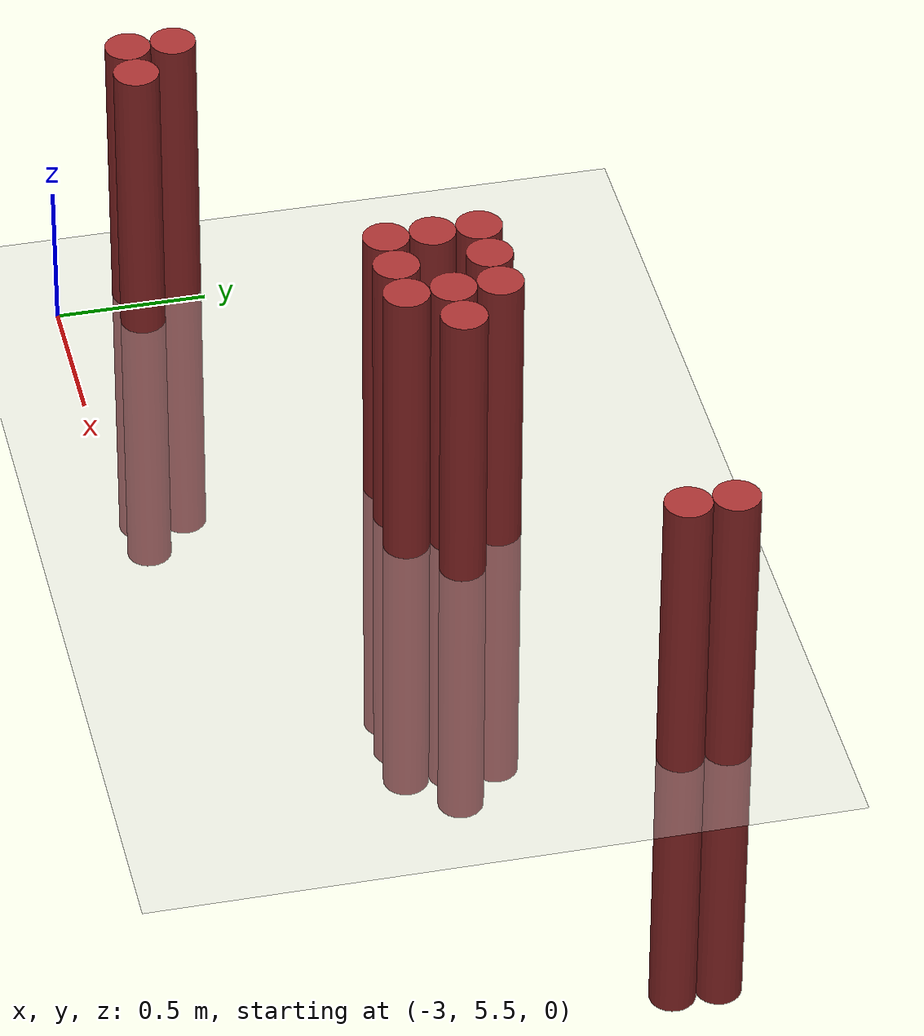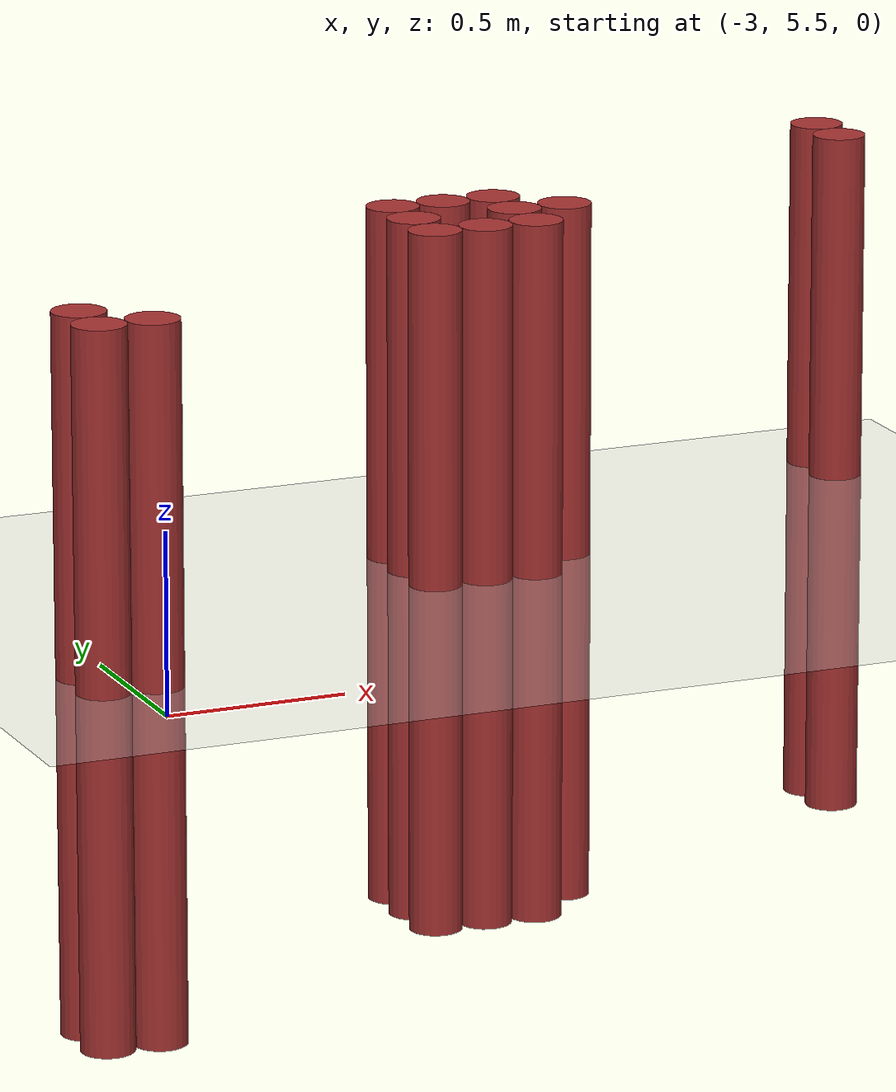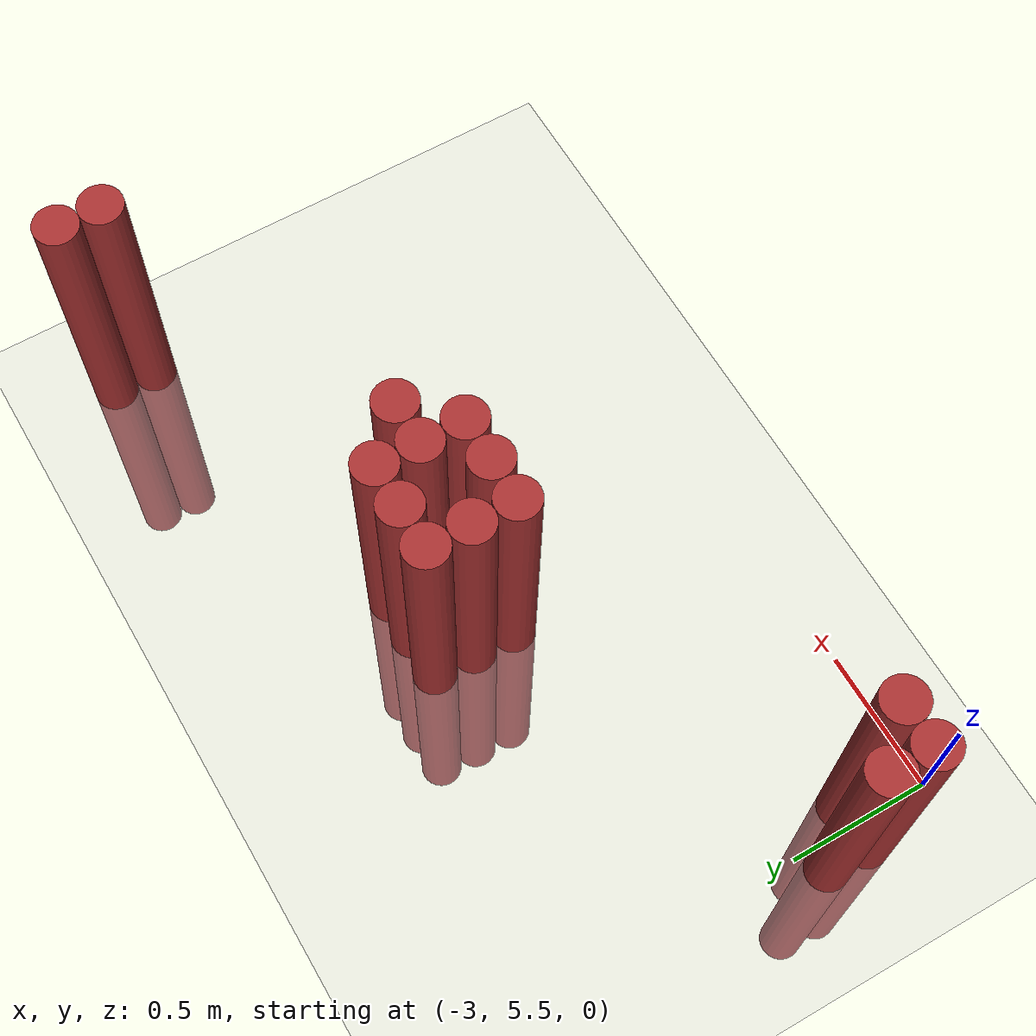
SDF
<sdf version="1.6">
 <world name="default">
  <model name="ground_plane">
   <static>1</static>
   <link name="link">
    <collision name="collision">
     <geometry><plane><normal>0 0 1</normal><size>100 100</size></plane></geometry>
     <surface><friction><ode><mu>100</mu><mu2>50</mu2></ode></friction></surface>
    </collision>
    <visual name="visual">
     <cast_shadows>0</cast_shadows>
     <geometry><plane><normal>0 0 1</normal><size>100 100</size></plane></geometry>
     <material>
      <script><uri>file://media/materials/scripts/gazebo.material</uri><name>Gazebo/Grey</name></script>
     </material>
    </visual>
   </link>
  </model>
  <model name="unit_cylinder_158">
   <static>1</static>
   <pose>-3.075000 5.775000 0.000000 0.000000 0.000000 0.000000</pose>
   <link name="link">
    <inertial>
     <mass>1</mass>
     <inertia><ixx>0.145833</ixx><ixy>0</ixy><ixz>0</ixz><iyy>0.145833</iyy><iyz>0</iyz><izz>0.125</izz></inertia>
    </inertial>
    <collision name="collision">
     <geometry><cylinder><radius>0.075000</radius><length>2</length></cylinder></geometry>
    </collision>
    <visual name="visual">
     <geometry><cylinder><radius>0.075000</radius><length>2</length></cylinder></geometry>
     <material>
      <ambient>0.648000 0.192000 0.192000 1</ambient>
      <diffuse>0.648000 0.192000 0.192000 1</diffuse>
     </material>
     <material>
      <script><name>Gazebo/Grey</name><uri>file://media/materials/scripts/gazebo.material</uri></script>
     </material>
    </visual>
   </link>
  </model>
  <model name="unit_cylinder_159">
   <static>1</static>
   <pose>-3.075000 5.925000 0.000000 0.000000 0.000000 0.000000</pose>
   <link name="link">
    <inertial>
     <mass>1</mass>
     <inertia><ixx>0.145833</ixx><ixy>0</ixy><ixz>0</ixz><iyy>0.145833</iyy><iyz>0</iyz><izz>0.125</izz></inertia>
    </inertial>
    <collision name="collision">
     <geometry><cylinder><radius>0.075000</radius><length>2</length></cylinder></geometry>
    </collision>
    <visual name="visual">
     <geometry><cylinder><radius>0.075000</radius><length>2</length></cylinder></geometry>
     <material>
      <ambient>0.648000 0.192000 0.192000 1</ambient>
      <diffuse>0.648000 0.192000 0.192000 1</diffuse>
     </material>
     <material>
      <script><name>Gazebo/Grey</name><uri>file://media/materials/scripts/gazebo.material</uri></script>
     </material>
    </visual>
   </link>
  </model>
  <model name="unit_cylinder_162">
   <static>1</static>
   <pose>-2.925000 5.775000 0.000000 0.000000 0.000000 0.000000</pose>
   <link name="link">
    <inertial>
     <mass>1</mass>
     <inertia><ixx>0.145833</ixx><ixy>0</ixy><ixz>0</ixz><iyy>0.145833</iyy><iyz>0</iyz><izz>0.125</izz></inertia>
    </inertial>
    <collision name="collision">
     <geometry><cylinder><radius>0.075000</radius><length>2</length></cylinder></geometry>
    </collision>
    <visual name="visual">
     <geometry><cylinder><radius>0.075000</radius><length>2</length></cylinder></geometry>
     <material>
      <ambient>0.648000 0.192000 0.192000 1</ambient>
      <diffuse>0.648000 0.192000 0.192000 1</diffuse>
     </material>
     <material>
      <script><name>Gazebo/Grey</name><uri>file://media/materials/scripts/gazebo.material</uri></script>
     </material>
    </visual>
   </link>
  </model>
  <model name="unit_cylinder_169">
   <static>1</static>
   <pose>-1.875000 6.375000 0.000000 0.000000 0.000000 0.000000</pose>
   <link name="link">
    <inertial>
     <mass>1</mass>
     <inertia><ixx>0.145833</ixx><ixy>0</ixy><ixz>0</ixz><iyy>0.145833</iyy><iyz>0</iyz><izz>0.125</izz></inertia>
    </inertial>
    <collision name="collision">
     <geometry><cylinder><radius>0.075000</radius><length>2</length></cylinder></geometry>
    </collision>
    <visual name="visual">
     <geometry><cylinder><radius>0.075000</radius><length>2</length></cylinder></geometry>
     <material>
      <ambient>0.648000 0.192000 0.192000 1</ambient>
      <diffuse>0.648000 0.192000 0.192000 1</diffuse>
     </material>
     <material>
      <script><name>Gazebo/Grey</name><uri>file://media/materials/scripts/gazebo.material</uri></script>
     </material>
    </visual>
   </link>
  </model>
  <model name="unit_cylinder_170">
   <static>1</static>
   <pose>-1.875000 6.525000 0.000000 0.000000 0.000000 0.000000</pose>
   <link name="link">
    <inertial>
     <mass>1</mass>
     <inertia><ixx>0.145833</ixx><ixy>0</ixy><ixz>0</ixz><iyy>0.145833</iyy><iyz>0</iyz><izz>0.125</izz></inertia>
    </inertial>
    <collision name="collision">
     <geometry><cylinder><radius>0.075000</radius><length>2</length></cylinder></geometry>
    </collision>
    <visual name="visual">
     <geometry><cylinder><radius>0.075000</radius><length>2</length></cylinder></geometry>
     <material>
      <ambient>0.648000 0.192000 0.192000 1</ambient>
      <diffuse>0.648000 0.192000 0.192000 1</diffuse>
     </material>
     <material>
      <script><name>Gazebo/Grey</name><uri>file://media/materials/scripts/gazebo.material</uri></script>
     </material>
    </visual>
   </link>
  </model>
  <model name="unit_cylinder_171">
   <static>1</static>
   <pose>-1.875000 6.675000 0.000000 0.000000 0.000000 0.000000</pose>
   <link name="link">
    <inertial>
     <mass>1</mass>
     <inertia><ixx>0.145833</ixx><ixy>0</ixy><ixz>0</ixz><iyy>0.145833</iyy><iyz>0</iyz><izz>0.125</izz></inertia>
    </inertial>
    <collision name="collision">
     <geometry><cylinder><radius>0.075000</radius><length>2</length></cylinder></geometry>
    </collision>
    <visual name="visual">
     <geometry><cylinder><radius>0.075000</radius><length>2</length></cylinder></geometry>
     <material>
      <ambient>0.648000 0.192000 0.192000 1</ambient>
      <diffuse>0.648000 0.192000 0.192000 1</diffuse>
     </material>
     <material>
      <script><name>Gazebo/Grey</name><uri>file://media/materials/scripts/gazebo.material</uri></script>
     </material>
    </visual>
   </link>
  </model>
  <model name="unit_cylinder_172">
   <static>1</static>
   <pose>-1.725000 6.375000 0.000000 0.000000 0.000000 0.000000</pose>
   <link name="link">
    <inertial>
     <mass>1</mass>
     <inertia><ixx>0.145833</ixx><ixy>0</ixy><ixz>0</ixz><iyy>0.145833</iyy><iyz>0</iyz><izz>0.125</izz></inertia>
    </inertial>
    <collision name="collision">
     <geometry><cylinder><radius>0.075000</radius><length>2</length></cylinder></geometry>
    </collision>
    <visual name="visual">
     <geometry><cylinder><radius>0.075000</radius><length>2</length></cylinder></geometry>
     <material>
      <ambient>0.648000 0.192000 0.192000 1</ambient>
      <diffuse>0.648000 0.192000 0.192000 1</diffuse>
     </material>
     <material>
      <script><name>Gazebo/Grey</name><uri>file://media/materials/scripts/gazebo.material</uri></script>
     </material>
    </visual>
   </link>
  </model>
  <model name="unit_cylinder_173">
   <static>1</static>
   <pose>-1.725000 6.675000 0.000000 0.000000 0.000000 0.000000</pose>
   <link name="link">
    <inertial>
     <mass>1</mass>
     <inertia><ixx>0.145833</ixx><ixy>0</ixy><ixz>0</ixz><iyy>0.145833</iyy><iyz>0</iyz><izz>0.125</izz></inertia>
    </inertial>
    <collision name="collision">
     <geometry><cylinder><radius>0.075000</radius><length>2</length></cylinder></geometry>
    </collision>
    <visual name="visual">
     <geometry><cylinder><radius>0.075000</radius><length>2</length></cylinder></geometry>
     <material>
      <ambient>0.648000 0.192000 0.192000 1</ambient>
      <diffuse>0.648000 0.192000 0.192000 1</diffuse>
     </material>
     <material>
      <script><name>Gazebo/Grey</name><uri>file://media/materials/scripts/gazebo.material</uri></script>
     </material>
    </visual>
   </link>
  </model>
  <model name="unit_cylinder_174">
   <static>1</static>
   <pose>-1.575000 6.375000 0.000000 0.000000 0.000000 0.000000</pose>
   <link name="link">
    <inertial>
     <mass>1</mass>
     <inertia><ixx>0.145833</ixx><ixy>0</ixy><ixz>0</ixz><iyy>0.145833</iyy><iyz>0</iyz><izz>0.125</izz></inertia>
    </inertial>
    <collision name="collision">
     <geometry><cylinder><radius>0.075000</radius><length>2</length></cylinder></geometry>
    </collision>
    <visual name="visual">
     <geometry><cylinder><radius>0.075000</radius><length>2</length></cylinder></geometry>
     <material>
      <ambient>0.648000 0.192000 0.192000 1</ambient>
      <diffuse>0.648000 0.192000 0.192000 1</diffuse>
     </material>
     <material>
      <script><name>Gazebo/Grey</name><uri>file://media/materials/scripts/gazebo.material</uri></script>
     </material>
    </visual>
   </link>
  </model>
  <model name="unit_cylinder_175">
   <static>1</static>
   <pose>-1.575000 6.525000 0.000000 0.000000 0.000000 0.000000</pose>
   <link name="link">
    <inertial>
     <mass>1</mass>
     <inertia><ixx>0.145833</ixx><ixy>0</ixy><ixz>0</ixz><iyy>0.145833</iyy><iyz>0</iyz><izz>0.125</izz></inertia>
    </inertial>
    <collision name="collision">
     <geometry><cylinder><radius>0.075000</radius><length>2</length></cylinder></geometry>
    </collision>
    <visual name="visual">
     <geometry><cylinder><radius>0.075000</radius><length>2</length></cylinder></geometry>
     <material>
      <ambient>0.648000 0.192000 0.192000 1</ambient>
      <diffuse>0.648000 0.192000 0.192000 1</diffuse>
     </material>
     <material>
      <script><name>Gazebo/Grey</name><uri>file://media/materials/scripts/gazebo.material</uri></script>
     </material>
    </visual>
   </link>
  </model>
  <model name="unit_cylinder_176">
   <static>1</static>
   <pose>-1.575000 6.675000 0.000000 0.000000 0.000000 0.000000</pose>
   <link name="link">
    <inertial>
     <mass>1</mass>
     <inertia><ixx>0.145833</ixx><ixy>0</ixy><ixz>0</ixz><iyy>0.145833</iyy><iyz>0</iyz><izz>0.125</izz></inertia>
    </inertial>
    <collision name="collision">
     <geometry><cylinder><radius>0.075000</radius><length>2</length></cylinder></geometry>
    </collision>
    <visual name="visual">
     <geometry><cylinder><radius>0.075000</radius><length>2</length></cylinder></geometry>
     <material>
      <ambient>0.648000 0.192000 0.192000 1</ambient>
      <diffuse>0.648000 0.192000 0.192000 1</diffuse>
     </material>
     <material>
      <script><name>Gazebo/Grey</name><uri>file://media/materials/scripts/gazebo.material</uri></script>
     </material>
    </visual>
   </link>
  </model>
  <model name="unit_cylinder_179">
   <static>1</static>
   <pose>-1.425000 6.525000 0.000000 0.000000 0.000000 0.000000</pose>
   <link name="link">
    <inertial>
     <mass>1</mass>
     <inertia><ixx>0.145833</ixx><ixy>0</ixy><ixz>0</ixz><iyy>0.145833</iyy><iyz>0</iyz><izz>0.125</izz></inertia>
    </inertial>
    <collision name="collision">
     <geometry><cylinder><radius>0.075000</radius><length>2</length></cylinder></geometry>
    </collision>
    <visual name="visual">
     <geometry><cylinder><radius>0.075000</radius><length>2</length></cylinder></geometry>
     <material>
      <ambient>0.648000 0.192000 0.192000 1</ambient>
      <diffuse>0.648000 0.192000 0.192000 1</diffuse>
     </material>
     <material>
      <script><name>Gazebo/Grey</name><uri>file://media/materials/scripts/gazebo.material</uri></script>
     </material>
    </visual>
   </link>
  </model>
  <model name="unit_cylinder_186">
   <static>1</static>
   <pose>-0.375000 6.975000 0.000000 0.000000 0.000000 0.000000</pose>
   <link name="link">
    <inertial>
     <mass>1</mass>
     <inertia><ixx>0.145833</ixx><ixy>0</ixy><ixz>0</ixz><iyy>0.145833</iyy><iyz>0</iyz><izz>0.125</izz></inertia>
    </inertial>
    <collision name="collision">
     <geometry><cylinder><radius>0.075000</radius><length>2</length></cylinder></geometry>
    </collision>
    <visual name="visual">
     <geometry><cylinder><radius>0.075000</radius><length>2</length></cylinder></geometry>
     <material>
      <ambient>0.648000 0.192000 0.192000 1</ambient>
      <diffuse>0.648000 0.192000 0.192000 1</diffuse>
     </material>
     <material>
      <script><name>Gazebo/Grey</name><uri>file://media/materials/scripts/gazebo.material</uri></script>
     </material>
    </visual>
   </link>
  </model>
  <model name="unit_cylinder_187">
   <static>1</static>
   <pose>-0.375000 7.125000 0.000000 0.000000 0.000000 0.000000</pose>
   <link name="link">
    <inertial>
     <mass>1</mass>
     <inertia><ixx>0.145833</ixx><ixy>0</ixy><ixz>0</ixz><iyy>0.145833</iyy><iyz>0</iyz><izz>0.125</izz></inertia>
    </inertial>
    <collision name="collision">
     <geometry><cylinder><radius>0.075000</radius><length>2</length></cylinder></geometry>
    </collision>
    <visual name="visual">
     <geometry><cylinder><radius>0.075000</radius><length>2</length></cylinder></geometry>
     <material>
      <ambient>0.648000 0.192000 0.192000 1</ambient>
      <diffuse>0.648000 0.192000 0.192000 1</diffuse>
     </material>
     <material>
      <script><name>Gazebo/Grey</name><uri>file://media/materials/scripts/gazebo.material</uri></script>
     </material>
    </visual>
   </link>
  </model>
 </world>
</sdf>
